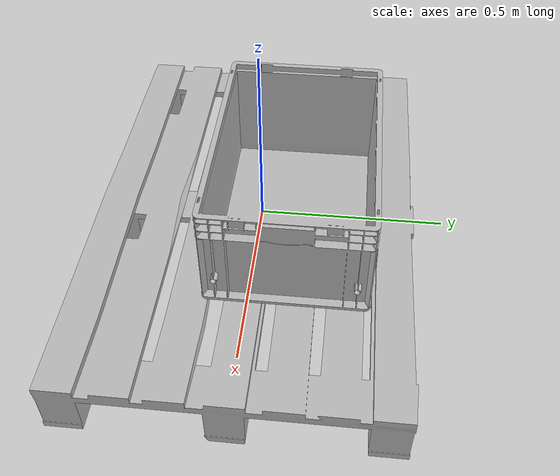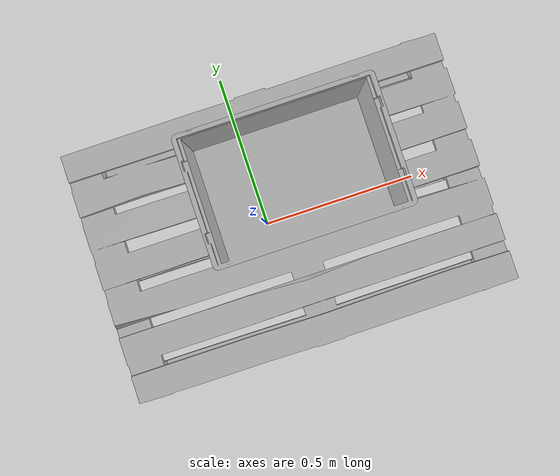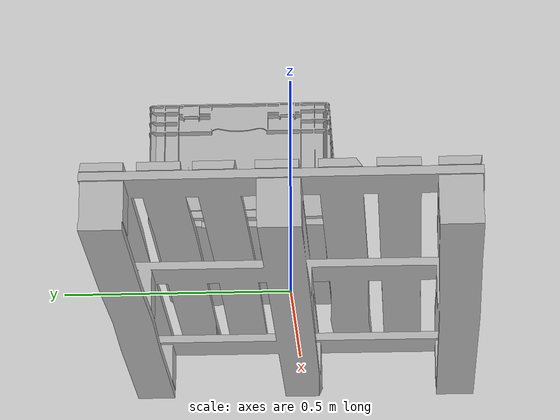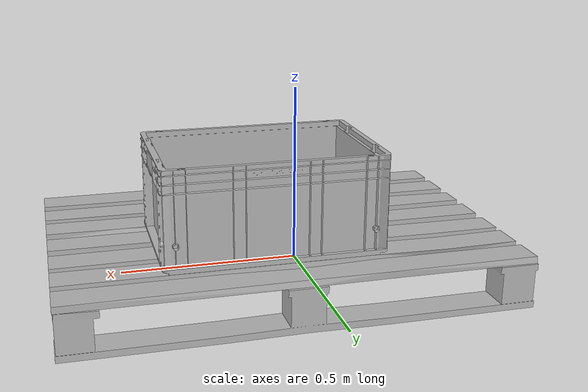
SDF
<?xml version="1.0" ?>
<sdf version="1.5">
  <model name="wooden_pallet_loaded_A">
    <include>
      <name>pallet</name>
      <uri>model://wooden_pallet</uri>
      <pose>0 0 0.05 0 0 0</pose>
    </include>
    <include>
      <name>klt_0</name>
      <uri>model://klt</uri>
      <pose>0 0 0.1 0 0 0</pose>
    </include>
    <joint name="link_link" type="fixed">
      <parent>pallet::link</parent>
      <child>klt_0::link</child>
      <axis>
        <xyz>0 0 1</xyz>
        <use_parent_model_frame>true</use_parent_model_frame>
      </axis>
    </joint>
  </model>
</sdf>

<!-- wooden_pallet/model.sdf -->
<sdf version="1.6">
  <model name="wooden pallet">
    <link name="link">
    <pose>0 0 0 1.57 0 1.57</pose>
      <inertial>
        <mass>20.0</mass>
        <inertia>
          <ixx>2.43</ixx>
          <ixy>0</ixy>
          <ixz>0</ixz>
          <iyy>1.10</iyy>
          <iyz>0</iyz>
          <izz>3.47</izz>
        </inertia>
      </inertial>
      <collision name="collision">
        <pose>0 0 0.05 0 0 0</pose>
        <geometry>
          <mesh>
            <scale>0.25 0.25 0.25</scale>
            <uri>model://wooden_pallet/meshes/pallet.obj</uri>
          </mesh>
        </geometry>
      </collision>
      <visual name="visual">
        <pose>0 0 0.05 0 0 0</pose>
        <geometry>
          <mesh>
            <scale>0.25 0.25 0.25</scale>
            <uri>model://wooden_pallet/meshes/pallet.obj</uri>
          </mesh>
        </geometry>
      </visual>
    </link>
  </model>
</sdf>

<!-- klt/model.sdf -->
<sdf version="1.6">
  <model name="KLT">
    <link name="link">
      <pose>0 0 0 0 0 0</pose>
      <inertial>
        <mass>1.0</mass>
        <inertia>
          <ixx>0.60</ixx>
          <ixy>0</ixy>
          <ixz>0</ixz>
          <iyy>0.40</iyy>
          <iyz>0</iyz>
          <izz>0.28</izz>
        </inertia>
      </inertial>
      <collision name="collision">
        <pose>0 0 0 0 0 0</pose>
        <geometry>
          <mesh>
            <scale>0.001 0.001 0.001</scale>
            <uri>model://klt/meshes/klt.obj</uri>
          </mesh>
        </geometry>
      </collision>
      <visual name="visual">
        <geometry>
          <mesh>
            <scale>0.001 0.001 0.001</scale>
            <uri>model://klt/meshes/klt.obj</uri>
          </mesh>
        </geometry>
      </visual>
    </link>
  </model>
</sdf>
